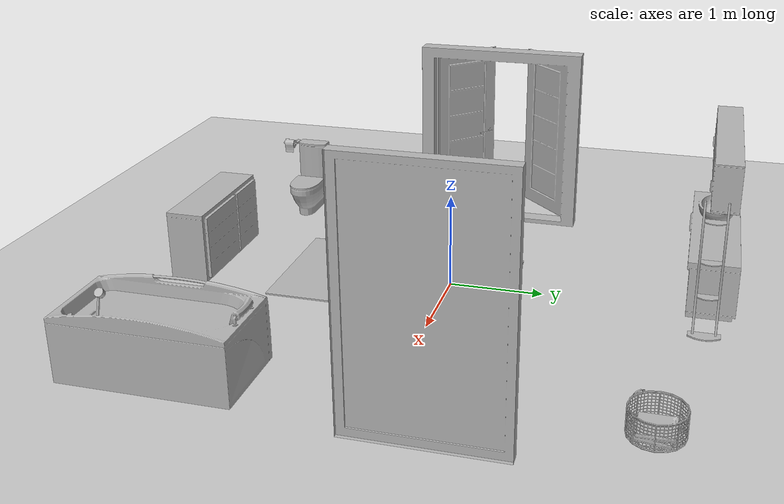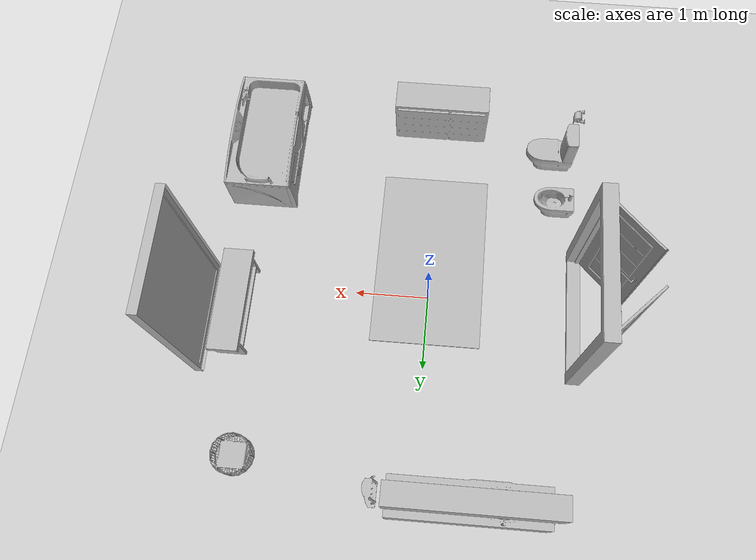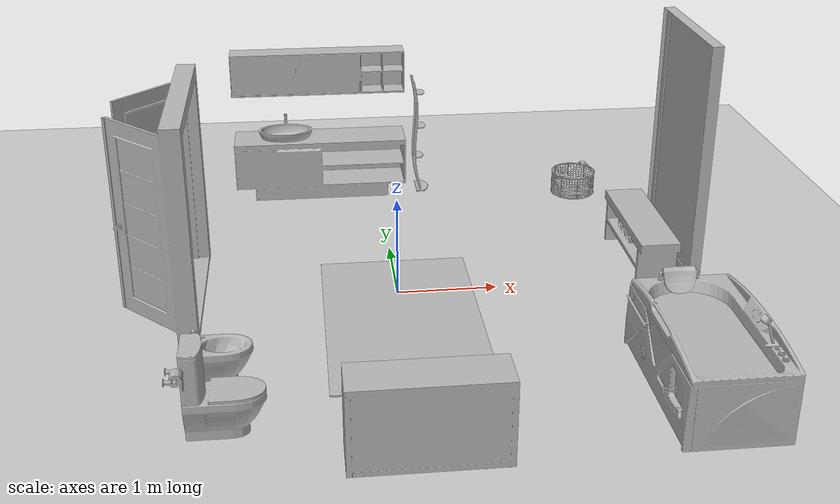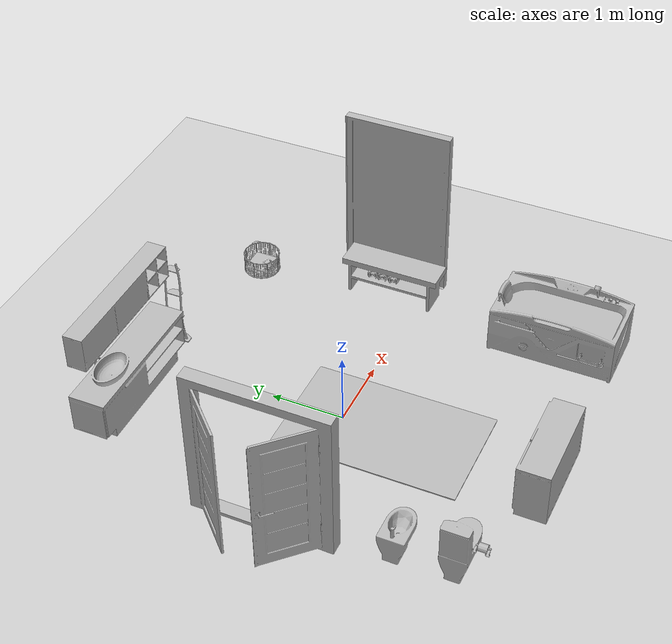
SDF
<sdf version="1.4">
 <world name="default">
  <light name="sun" type="directional">
   <pose>0 0 10 0 -0 0</pose>
   <diffuse>0.8 0.8 0.8 1</diffuse>
   <specular>0.2 0.2 0.2 1</specular>
   <attenuation>
    <range>1000</range>
    <constant>0.9</constant>
    <linear>0.01</linear>
    <quadratic>0.001</quadratic>
   </attenuation>
   <direction>-0.5 0.1 -0.9</direction>
  </light>
  <model name="ground_plane">
   <static>1</static>
   <link name="link">
    <collision name="collision">
     <geometry><plane><normal>0 0 1</normal><size>100 100</size></plane></geometry>
     <surface><friction><ode><mu>100</mu><mu2>50</mu2></ode></friction></surface>
    </collision>
    <visual name="visual">
     <cast_shadows>0</cast_shadows>
     <geometry><plane><normal>0 0 1</normal><size>100 100</size></plane></geometry>
     <material>
      <script><uri>file://media/materials/scripts/gazebo.material</uri><name>Gazebo/Grey</name></script>
     </material>
    </visual>
    <velocity_decay><linear>0</linear><angular>0</angular></velocity_decay>
   </link>
  </model>
  <physics type="ode">
   <max_step_size>0.001</max_step_size>
   <real_time_factor>1</real_time_factor>
   <real_time_update_rate>1000</real_time_update_rate>
   <gravity>0 0 -9.8</gravity>
  </physics>
  <scene><ambient>0.4 0.4 0.4 1</ambient><background>0.7 0.7 0.7 1</background><shadows>1</shadows></scene>
  <spherical_coordinates>
   <surface_model>EARTH_WGS84</surface_model>
   <latitude_deg>0</latitude_deg>
   <longitude_deg>0</longitude_deg>
   <elevation>0</elevation>
   <heading_deg>0</heading_deg>
  </spherical_coordinates>
  <model name="133_0">
   <pose>-2.00727 0.109147 -0.003013 0 -0 0</pose>
   <static>1</static>
   <link name="link">
    <collision name="collision"><geometry><box><size>0.769999 1.9 2</size></box></geometry></collision>
    <visual name="visual"><geometry><mesh><uri>model://133/133.dae</uri></mesh></geometry></visual>
    <velocity_decay><linear>0</linear><angular>0</angular></velocity_decay>
   </link>
  </model>
  <model name="s__1136_0">
   <pose>-1.58982 -2.24444 0.0032 0 -0 0</pose>
   <static>1</static>
   <link name="link">
    <collision name="collision"><geometry><box><size>0.66 0.36 2</size></box></geometry></collision>
    <visual name="visual"><geometry><mesh><uri>model://s__1136/s__1136.dae</uri></mesh></geometry></visual>
    <velocity_decay><linear>0</linear><angular>0</angular></velocity_decay>
   </link>
  </model>
  <model name="s__1138_0">
   <pose>-1.66537 -1.48437 0 0 -0 0</pose>
   <static>1</static>
   <link name="link">
    <collision name="collision"><geometry><box><size>0.56 0.36 2</size></box></geometry></collision>
    <visual name="visual"><geometry><mesh><uri>model://s__1138/s__1138.dae</uri></mesh></geometry></visual>
    <velocity_decay><linear>0</linear><angular>0</angular></velocity_decay>
   </link>
  </model>
  <model name="s__1321_0">
   <pose>-1.93568 -2.59262 0.656889 0 -0 0</pose>
   <static>1</static>
   <link name="link">
    <collision name="collision"><geometry><box><size>0.14 0.21 2</size></box></geometry></collision>
    <visual name="visual"><geometry><mesh><uri>model://s__1321/s__1321.dae</uri></mesh></geometry></visual>
    <velocity_decay><linear>0</linear><angular>0</angular></velocity_decay>
   </link>
  </model>
  <model name="447_0">
   <pose>-0.676284 2.69712 -0.009528 0 0 -1.5708</pose>
   <static>1</static>
   <link name="link">
    <collision name="collision"><geometry><box><size>0.520299 2 2</size></box></geometry></collision>
    <visual name="visual"><geometry><mesh><uri>model://447/447.dae</uri></mesh></geometry></visual>
    <velocity_decay><linear>0</linear><angular>0</angular></velocity_decay>
   </link>
  </model>
  <model name="448_0">
   <pose>-0.676284 2.74308 1.23069 0 0 -1.5708</pose>
   <static>1</static>
   <link name="link">
    <collision name="collision"><geometry><box><size>0.28657 2 2</size></box></geometry></collision>
    <visual name="visual"><geometry><mesh><uri>model://448/448.dae</uri></mesh></geometry></visual>
    <velocity_decay><linear>0</linear><angular>0</angular></velocity_decay>
   </link>
  </model>
  <model name="192_0">
   <pose>0.517959 2.67226 0.006505 0 -0 0</pose>
   <static>1</static>
   <link name="link">
    <collision name="collision"><geometry><box><size>0.199894 0.318718 2</size></box></geometry></collision>
    <visual name="visual"><geometry><mesh><uri>model://192/192.dae</uri></mesh></geometry></visual>
    <velocity_decay><linear>0</linear><angular>0</angular></velocity_decay>
   </link>
  </model>
  <model name="s__1137_0">
   <pose>2.31893 2.33246 0.005585 0 -0 0</pose>
   <static>1</static>
   <link name="link">
    <collision name="collision"><geometry><box><size>0.52 0.52 2</size></box></geometry></collision>
    <visual name="visual"><geometry><mesh><uri>model://s__1137/s__1137.dae</uri></mesh></geometry></visual>
    <velocity_decay><linear>0</linear><angular>0</angular></velocity_decay>
   </link>
  </model>
  <model name="s__1941_0">
   <pose>2.57444 0.389305 0.006669 0 -0 0</pose>
   <static>1</static>
   <link name="link">
    <collision name="collision"><geometry><box><size>0.400001 1.4 2</size></box></geometry></collision>
    <visual name="visual"><geometry><mesh><uri>model://s__1941/s__1941.dae</uri></mesh></geometry></visual>
    <velocity_decay><linear>0</linear><angular>0</angular></velocity_decay>
   </link>
  </model>
  <model name="752_0">
   <pose>2.97403 0.520698 0.007254 0 -0 3.14159</pose>
   <static>1</static>
   <link name="link">
    <collision name="collision"><geometry><box><size>0.115 1.5 2</size></box></geometry></collision>
    <visual name="visual"><geometry><mesh><uri>model://752/752.dae</uri></mesh></geometry></visual>
    <velocity_decay><linear>0</linear><angular>0</angular></velocity_decay>
   </link>
  </model>
  <model name="s__1697_0">
   <pose>2.41932 -2.08238 0.02538 0 -0 3.14159</pose>
   <static>1</static>
   <link name="link">
    <collision name="collision"><geometry><box><size>0.97 1.75974 2</size></box></geometry></collision>
    <visual name="visual"><geometry><mesh><uri>model://s__1697/s__1697.dae</uri></mesh></geometry></visual>
    <velocity_decay><linear>0</linear><angular>0</angular></velocity_decay>
   </link>
  </model>
  <model name="238_0">
   <pose>0 -0.582396 0 0 -0 3.14159</pose>
   <static>1</static>
   <link name="link">
    <collision name="collision"><geometry><box><size>1.5 2.5 0</size></box></geometry></collision>
    <visual name="visual"><geometry><mesh><uri>model://238/238.dae</uri></mesh></geometry></visual>
    <velocity_decay><linear>0</linear><angular>0</angular></velocity_decay>
   </link>
  </model>
  <model name="s__1713_0">
   <pose>-0.004284 -2.73676 0.007931 0 -0 1.5708</pose>
   <static>1</static>
   <link name="link">
    <collision name="collision"><geometry><box><size>0.45 1.32 2</size></box></geometry></collision>
    <visual name="visual"><geometry><mesh><uri>model://s__1713/s__1713.dae</uri></mesh></geometry></visual>
    <velocity_decay><linear>0</linear><angular>0</angular></velocity_decay>
   </link>
  </model>
 </world>
</sdf>
